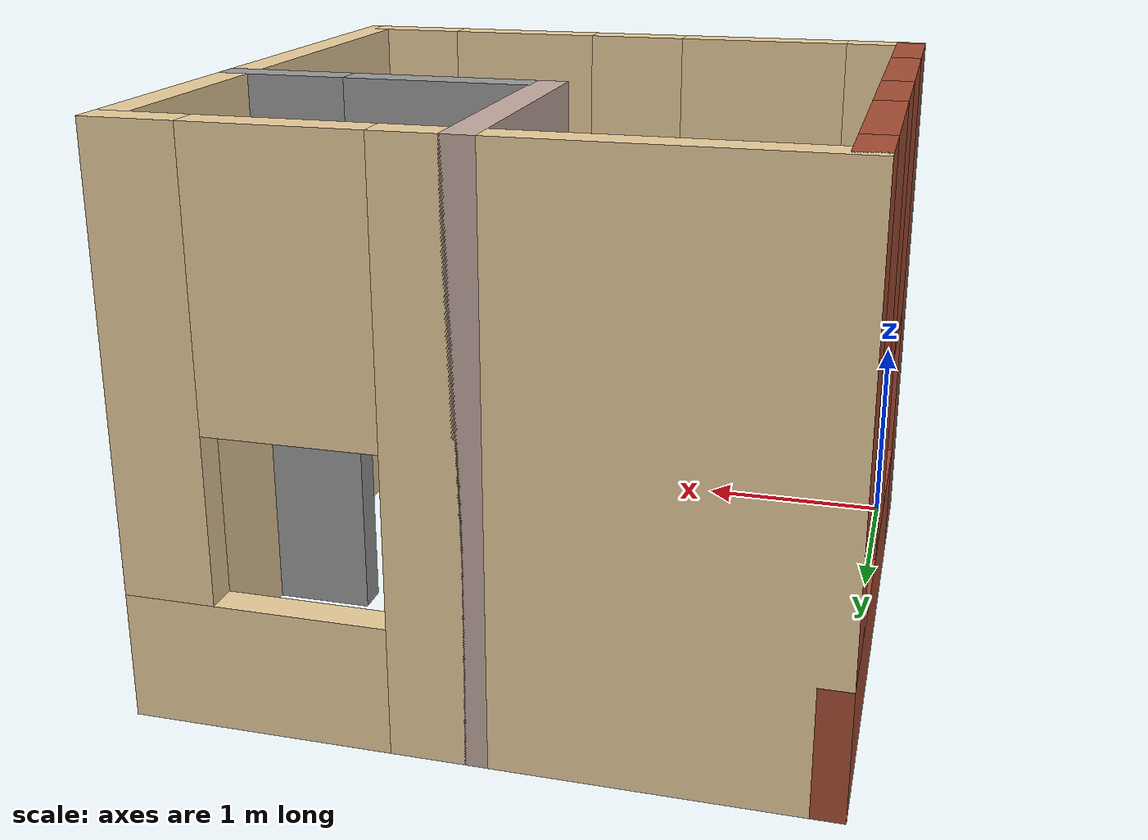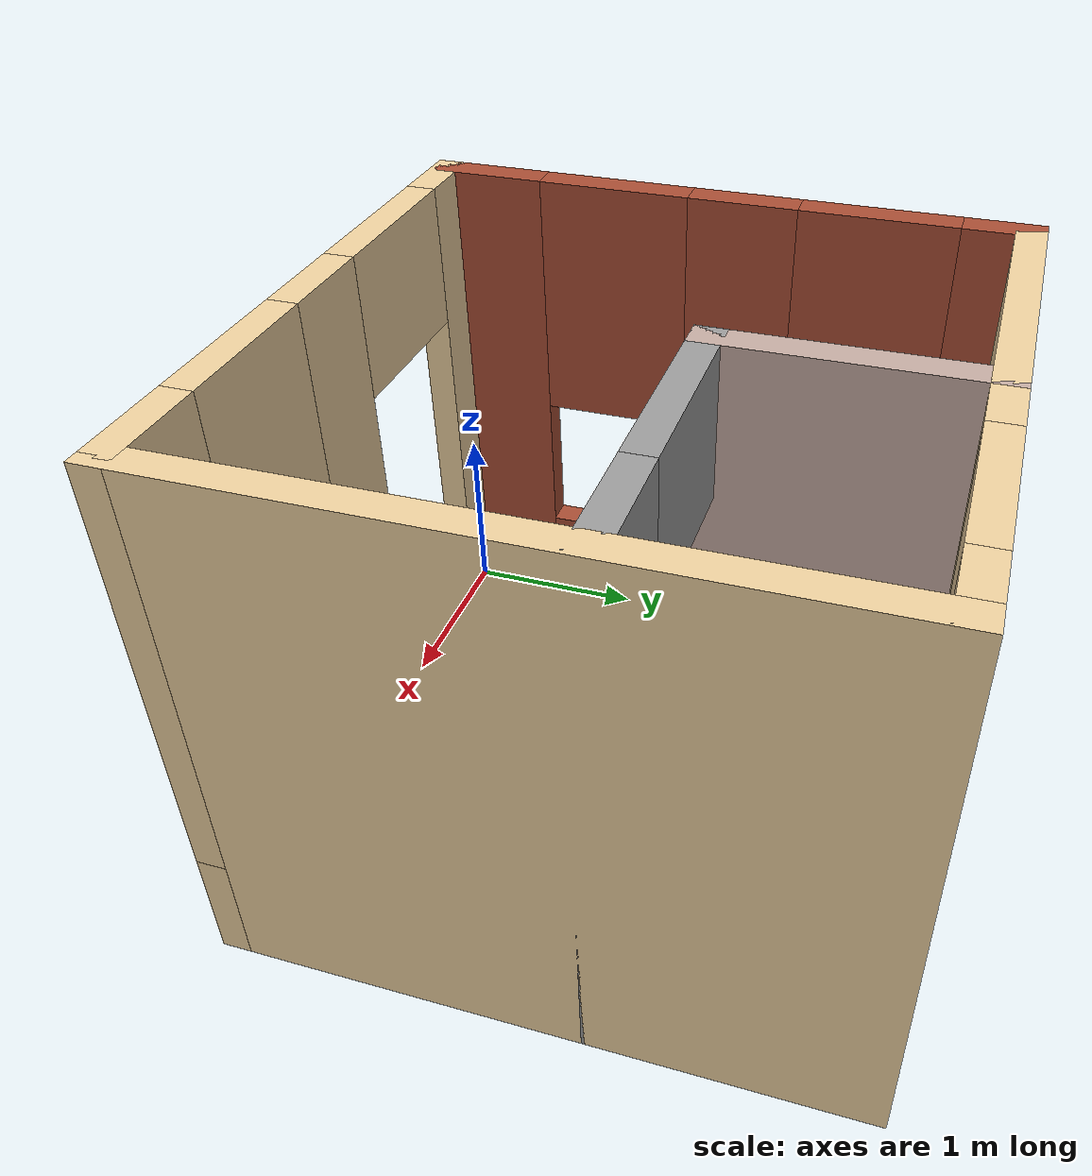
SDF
<?xml version='1.0'?>
<sdf version='1.6'>
  <model name='Floor_Plan'>
    <pose frame=''>1.524 1.524 0 0 -0 0</pose>
    <link name='Wall_10'>
      <collision name='Wall_10_Collision'>
        <geometry>
          <box>
            <size>1.37 0.15 2.743</size>
          </box>
        </geometry>
        <pose frame=''>0 0 1.3715 0 -0 0</pose>
      </collision>
      <visual name='Wall_10_Visual'>
        <pose frame=''>0 0 1.3715 0 -0 0</pose>
        <geometry>
          <box>
            <size>1.37 0.15 2.743</size>
          </box>
        </geometry>
        <material>
          <script>
            <uri>file://media/materials/scripts/gazebo.material</uri>
            <name>Gazebo/Grey</name>
          </script>
          <ambient>0.760784 0.662745 0.627451 1</ambient>
        </material>
        <meta>
          <layer>0</layer>
        </meta>
      </visual>
      <pose frame=''>0 0.914 0 0 0 -1.5708</pose>
    </link>
    <link name='Wall_12'>
      <pose frame=''>0.762 0.304 0 0 -0 0</pose>
      <visual name='Wall_12_Visual_0'>
        <pose frame=''>-0.766304 0 1.3715 0 -0 0</pose>
        <geometry>
          <box>
            <size>0.141391 0.15 2.743</size>
          </box>
        </geometry>
        <material>
          <script>
            <uri>file://media/materials/scripts/gazebo.material</uri>
            <name>Gazebo/Grey</name>
          </script>
          <ambient>1 1 1 1</ambient>
        </material>
        <meta>
          <layer>0</layer>
        </meta>
      </visual>
      <collision name='Wall_12_Collision_0'>
        <geometry>
          <box>
            <size>0.141391 0.15 2.743</size>
          </box>
        </geometry>
        <pose frame=''>-0.766304 0 1.3715 0 -0 0</pose>
      </collision>
      <visual name='Wall_12_Visual_1'>
        <pose frame=''>0.520696 0 1.3715 0 -0 0</pose>
        <geometry>
          <box>
            <size>0.632609 0.15 2.743</size>
          </box>
        </geometry>
        <material>
          <script>
            <uri>file://media/materials/scripts/gazebo.material</uri>
            <name>Gazebo/Grey</name>
          </script>
          <ambient>1 1 1 1</ambient>
        </material>
        <meta>
          <layer>0</layer>
        </meta>
      </visual>
      <collision name='Wall_12_Collision_1'>
        <geometry>
          <box>
            <size>0.632609 0.15 2.743</size>
          </box>
        </geometry>
        <pose frame=''>0.520696 0 1.3715 0 -0 0</pose>
      </collision>
      <visual name='Wall_12_Visual_2'>
        <pose frame=''>-0.245609 0 2.3715 0 -0 0</pose>
        <geometry>
          <box>
            <size>0.9 0.15 0.743</size>
          </box>
        </geometry>
        <material>
          <script>
            <uri>file://media/materials/scripts/gazebo.material</uri>
            <name>Gazebo/Grey</name>
          </script>
          <ambient>1 1 1 1</ambient>
        </material>
        <meta>
          <layer>0</layer>
        </meta>
      </visual>
      <collision name='Wall_12_Collision_2'>
        <geometry>
          <box>
            <size>0.9 0.15 0.743</size>
          </box>
        </geometry>
        <pose frame=''>-0.245609 0 2.3715 0 -0 0</pose>
      </collision>
    </link>
    <link name='Wall_2'>
      <pose frame=''>0 -1.524 0 0 -0 0</pose>
      <visual name='Wall_2_Visual_0'>
        <pose frame=''>-1.3934 0 1.3715 0 -0 0</pose>
        <geometry>
          <box>
            <size>0.411192 0.15 2.743</size>
          </box>
        </geometry>
        <material>
          <script>
            <uri>file://media/materials/scripts/gazebo.material</uri>
            <name>Gazebo/Grey</name>
          </script>
          <ambient>0.921569 0.807843 0.615686 1</ambient>
        </material>
        <meta>
          <layer>0</layer>
        </meta>
      </visual>
      <collision name='Wall_2_Collision_0'>
        <geometry>
          <box>
            <size>0.411192 0.15 2.743</size>
          </box>
        </geometry>
        <pose frame=''>-1.3934 0 1.3715 0 -0 0</pose>
      </collision>
      <visual name='Wall_2_Visual_1'>
        <pose frame=''>-0.030136 0 1.3715 0 -0 0</pose>
        <geometry>
          <box>
            <size>0.515344 0.15 2.743</size>
          </box>
        </geometry>
        <material>
          <script>
            <uri>file://media/materials/scripts/gazebo.material</uri>
            <name>Gazebo/Grey</name>
          </script>
          <ambient>0.921569 0.807843 0.615686 1</ambient>
        </material>
        <meta>
          <layer>0</layer>
        </meta>
      </visual>
      <collision name='Wall_2_Collision_1'>
        <geometry>
          <box>
            <size>0.515344 0.15 2.743</size>
          </box>
        </geometry>
        <pose frame=''>-0.030136 0 1.3715 0 -0 0</pose>
      </collision>
      <visual name='Wall_2_Visual_2'>
        <pose frame=''>0.913268 0 0.3045 0 -0 0</pose>
        <geometry>
          <box>
            <size>1.37146 0.15 0.609</size>
          </box>
        </geometry>
        <material>
          <script>
            <uri>file://media/materials/scripts/gazebo.material</uri>
            <name>Gazebo/Grey</name>
          </script>
          <ambient>0.921569 0.807843 0.615686 1</ambient>
        </material>
        <meta>
          <layer>0</layer>
        </meta>
      </visual>
      <collision name='Wall_2_Collision_2'>
        <geometry>
          <box>
            <size>1.37146 0.15 0.609</size>
          </box>
        </geometry>
        <pose frame=''>0.913268 0 0.3045 0 -0 0</pose>
      </collision>
      <visual name='Wall_2_Visual_3'>
        <pose frame=''>1.31327 0 1.676 0 -0 0</pose>
        <geometry>
          <box>
            <size>0.571465 0.15 2.134</size>
          </box>
        </geometry>
        <material>
          <script>
            <uri>file://media/materials/scripts/gazebo.material</uri>
            <name>Gazebo/Grey</name>
          </script>
          <ambient>0.921569 0.807843 0.615686 1</ambient>
        </material>
        <meta>
          <layer>0</layer>
        </meta>
      </visual>
      <collision name='Wall_2_Collision_3'>
        <geometry>
          <box>
            <size>0.571465 0.15 2.134</size>
          </box>
        </geometry>
        <pose frame=''>1.31327 0 1.676 0 -0 0</pose>
      </collision>
      <visual name='Wall_2_Visual_4'>
        <pose frame=''>0.627535 0 2.076 0 -0 0</pose>
        <geometry>
          <box>
            <size>0.8 0.15 1.334</size>
          </box>
        </geometry>
        <material>
          <script>
            <uri>file://media/materials/scripts/gazebo.material</uri>
            <name>Gazebo/Grey</name>
          </script>
          <ambient>0.921569 0.807843 0.615686 1</ambient>
        </material>
        <meta>
          <layer>0</layer>
        </meta>
      </visual>
      <collision name='Wall_2_Collision_4'>
        <geometry>
          <box>
            <size>0.8 0.15 1.334</size>
          </box>
        </geometry>
        <pose frame=''>0.627535 0 2.076 0 -0 0</pose>
      </collision>
      <visual name='Wall_2_Visual_5'>
        <pose frame=''>-0.737808 0 2.3715 0 -0 0</pose>
        <geometry>
          <box>
            <size>0.9 0.15 0.743</size>
          </box>
        </geometry>
        <material>
          <script>
            <uri>file://media/materials/scripts/gazebo.material</uri>
            <name>Gazebo/Grey</name>
          </script>
          <ambient>0.921569 0.807843 0.615686 1</ambient>
        </material>
        <meta>
          <layer>0</layer>
        </meta>
      </visual>
      <collision name='Wall_2_Collision_5'>
        <geometry>
          <box>
            <size>0.9 0.15 0.743</size>
          </box>
        </geometry>
        <pose frame=''>-0.737808 0 2.3715 0 -0 0</pose>
      </collision>
    </link>
    <link name='Wall_4'>
      <pose frame=''>-1.524 0 0 0 -0 1.5708</pose>
      <visual name='Wall_4_Visual_0'>
        <pose frame=''>-1.28487 0 1.3715 0 -0 0</pose>
        <geometry>
          <box>
            <size>0.628265 0.15 2.743</size>
          </box>
        </geometry>
        <material>
          <script>
            <uri>file://media/materials/scripts/gazebo.material</uri>
            <name>Gazebo/Bricks</name>
          </script>
          <ambient>0.921569 0.807843 0.615686 1</ambient>
        </material>
        <meta>
          <layer>0</layer>
        </meta>
      </visual>
      <collision name='Wall_4_Collision_0'>
        <geometry>
          <box>
            <size>0.628265 0.15 2.743</size>
          </box>
        </geometry>
        <pose frame=''>-1.28487 0 1.3715 0 -0 0</pose>
      </collision>
      <visual name='Wall_4_Visual_1'>
        <pose frame=''>0.314132 0 0.3045 0 -0 0</pose>
        <geometry>
          <box>
            <size>2.56974 0.15 0.609</size>
          </box>
        </geometry>
        <material>
          <script>
            <uri>file://media/materials/scripts/gazebo.material</uri>
            <name>Gazebo/Bricks</name>
          </script>
          <ambient>0.921569 0.807843 0.615686 1</ambient>
        </material>
        <meta>
          <layer>0</layer>
        </meta>
      </visual>
      <collision name='Wall_4_Collision_1'>
        <geometry>
          <box>
            <size>2.56974 0.15 0.609</size>
          </box>
        </geometry>
        <pose frame=''>0.314132 0 0.3045 0 -0 0</pose>
      </collision>
      <visual name='Wall_4_Visual_2'>
        <pose frame=''>0.113126 0 1.676 0 -0 0</pose>
        <geometry>
          <box>
            <size>0.567723 0.15 2.134</size>
          </box>
        </geometry>
        <material>
          <script>
            <uri>file://media/materials/scripts/gazebo.material</uri>
            <name>Gazebo/Bricks</name>
          </script>
          <ambient>0.921569 0.807843 0.615686 1</ambient>
        </material>
        <meta>
          <layer>0</layer>
        </meta>
      </visual>
      <collision name='Wall_4_Collision_2'>
        <geometry>
          <box>
            <size>0.567723 0.15 2.134</size>
          </box>
        </geometry>
        <pose frame=''>0.113126 0 1.676 0 -0 0</pose>
      </collision>
      <visual name='Wall_4_Visual_3'>
        <pose frame=''>1.39799 0 1.676 0 -0 0</pose>
        <geometry>
          <box>
            <size>0.402013 0.15 2.134</size>
          </box>
        </geometry>
        <material>
          <script>
            <uri>file://media/materials/scripts/gazebo.material</uri>
            <name>Gazebo/Bricks</name>
          </script>
          <ambient>0.921569 0.807843 0.615686 1</ambient>
        </material>
        <meta>
          <layer>0</layer>
        </meta>
      </visual>
      <collision name='Wall_4_Collision_3'>
        <geometry>
          <box>
            <size>0.402013 0.15 2.134</size>
          </box>
        </geometry>
        <pose frame=''>1.39799 0 1.676 0 -0 0</pose>
      </collision>
      <visual name='Wall_4_Visual_4'>
        <pose frame=''>-0.570735 0 2.076 0 -0 0</pose>
        <geometry>
          <box>
            <size>0.8 0.15 1.334</size>
          </box>
        </geometry>
        <material>
          <script>
            <uri>file://media/materials/scripts/gazebo.material</uri>
            <name>Gazebo/Bricks</name>
          </script>
          <ambient>0.921569 0.807843 0.615686 1</ambient>
        </material>
        <meta>
          <layer>0</layer>
        </meta>
      </visual>
      <collision name='Wall_4_Collision_4'>
        <geometry>
          <box>
            <size>0.8 0.15 1.334</size>
          </box>
        </geometry>
        <pose frame=''>-0.570735 0 2.076 0 -0 0</pose>
      </collision>
      <visual name='Wall_4_Visual_5'>
        <pose frame=''>0.796987 0 2.076 0 -0 0</pose>
        <geometry>
          <box>
            <size>0.8 0.15 1.334</size>
          </box>
        </geometry>
        <material>
          <script>
            <uri>file://media/materials/scripts/gazebo.material</uri>
            <name>Gazebo/Bricks</name>
          </script>
          <ambient>0.921569 0.807843 0.615686 1</ambient>
        </material>
        <meta>
          <layer>0</layer>
        </meta>
      </visual>
      <collision name='Wall_4_Collision_5'>
        <geometry>
          <box>
            <size>0.8 0.15 1.334</size>
          </box>
        </geometry>
        <pose frame=''>0.796987 0 2.076 0 -0 0</pose>
      </collision>
    </link>
    <link name='Wall_6'>
      <pose frame=''>0 1.524 0 0 -0 0</pose>
      <visual name='Wall_6_Visual_0'>
        <pose frame=''>-0.615335 0 1.3715 0 -0 0</pose>
        <geometry>
          <box>
            <size>1.96733 0.15 2.743</size>
          </box>
        </geometry>
        <material>
          <script>
            <uri>file://media/materials/scripts/gazebo.material</uri>
            <name>Gazebo/Grey</name>
          </script>
          <ambient>0.921569 0.807843 0.615686 1</ambient>
        </material>
        <meta>
          <layer>0</layer>
        </meta>
      </visual>
      <collision name='Wall_6_Collision_0'>
        <geometry>
          <box>
            <size>1.96733 0.15 2.743</size>
          </box>
        </geometry>
        <pose frame=''>-0.615335 0 1.3715 0 -0 0</pose>
      </collision>
      <visual name='Wall_6_Visual_1'>
        <pose frame=''>0.983665 0 0.3045 0 -0 0</pose>
        <geometry>
          <box>
            <size>1.23067 0.15 0.609</size>
          </box>
        </geometry>
        <material>
          <script>
            <uri>file://media/materials/scripts/gazebo.material</uri>
            <name>Gazebo/Grey</name>
          </script>
          <ambient>0.921569 0.807843 0.615686 1</ambient>
        </material>
        <meta>
          <layer>0</layer>
        </meta>
      </visual>
      <collision name='Wall_6_Collision_1'>
        <geometry>
          <box>
            <size>1.23067 0.15 0.609</size>
          </box>
        </geometry>
        <pose frame=''>0.983665 0 0.3045 0 -0 0</pose>
      </collision>
      <visual name='Wall_6_Visual_2'>
        <pose frame=''>1.38366 0 1.676 0 -0 0</pose>
        <geometry>
          <box>
            <size>0.43067 0.15 2.134</size>
          </box>
        </geometry>
        <material>
          <script>
            <uri>file://media/materials/scripts/gazebo.material</uri>
            <name>Gazebo/Grey</name>
          </script>
          <ambient>0.921569 0.807843 0.615686 1</ambient>
        </material>
        <meta>
          <layer>0</layer>
        </meta>
      </visual>
      <collision name='Wall_6_Collision_2'>
        <geometry>
          <box>
            <size>0.43067 0.15 2.134</size>
          </box>
        </geometry>
        <pose frame=''>1.38366 0 1.676 0 -0 0</pose>
      </collision>
      <visual name='Wall_6_Visual_3'>
        <pose frame=''>0.76833 0 2.076 0 -0 0</pose>
        <geometry>
          <box>
            <size>0.8 0.15 1.334</size>
          </box>
        </geometry>
        <material>
          <script>
            <uri>file://media/materials/scripts/gazebo.material</uri>
            <name>Gazebo/Grey</name>
          </script>
          <ambient>0.921569 0.807843 0.615686 1</ambient>
        </material>
        <meta>
          <layer>0</layer>
        </meta>
      </visual>
      <collision name='Wall_6_Collision_3'>
        <geometry>
          <box>
            <size>0.8 0.15 1.334</size>
          </box>
        </geometry>
        <pose frame=''>0.76833 0 2.076 0 -0 0</pose>
      </collision>
    </link>
    <link name='Wall_8'>
      <collision name='Wall_8_Collision'>
        <geometry>
          <box>
            <size>3.198 0.15 2.743</size>
          </box>
        </geometry>
        <pose frame=''>0 0 1.3715 0 -0 0</pose>
      </collision>
      <visual name='Wall_8_Visual'>
        <pose frame=''>0 0 1.3715 0 -0 0</pose>
        <geometry>
          <box>
            <size>3.198 0.15 2.743</size>
          </box>
        </geometry>
        <material>
          <script>
            <uri>file://media/materials/scripts/gazebo.material</uri>
            <name>Gazebo/Grey</name>
          </script>
          <ambient>0.921569 0.807843 0.615686 1</ambient>
        </material>
        <meta>
          <layer>0</layer>
        </meta>
      </visual>
      <pose frame=''>1.524 0 0 0 0 -1.5708</pose>
    </link>
    <static>1</static>
  </model>
</sdf>
